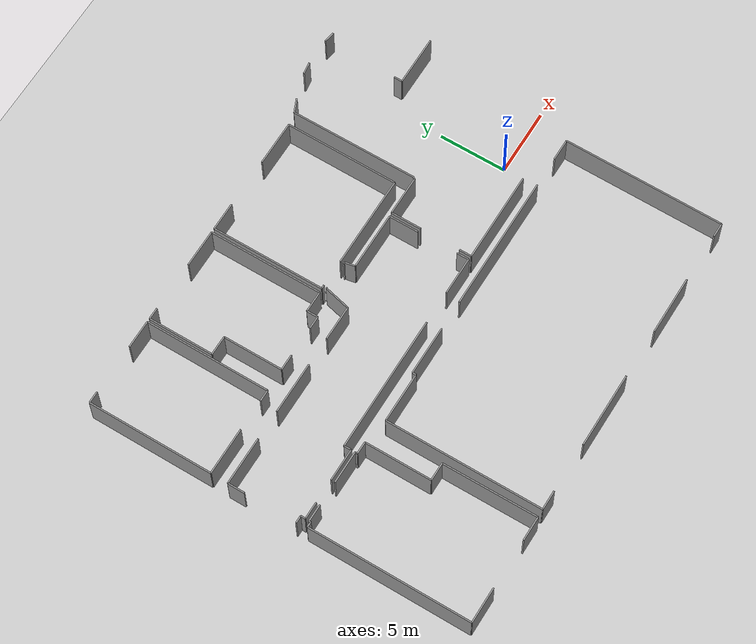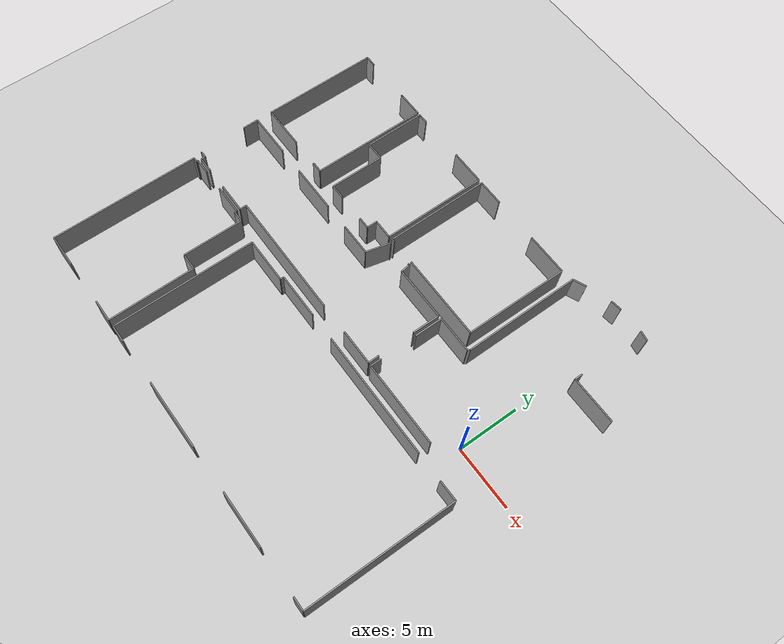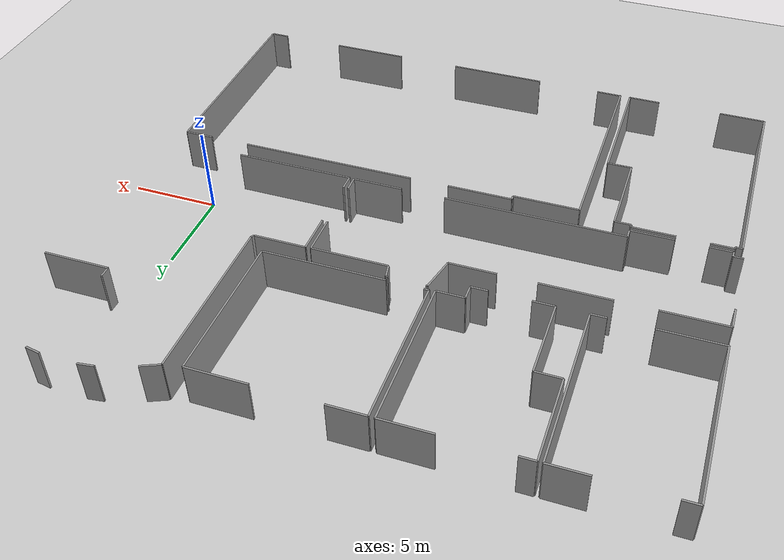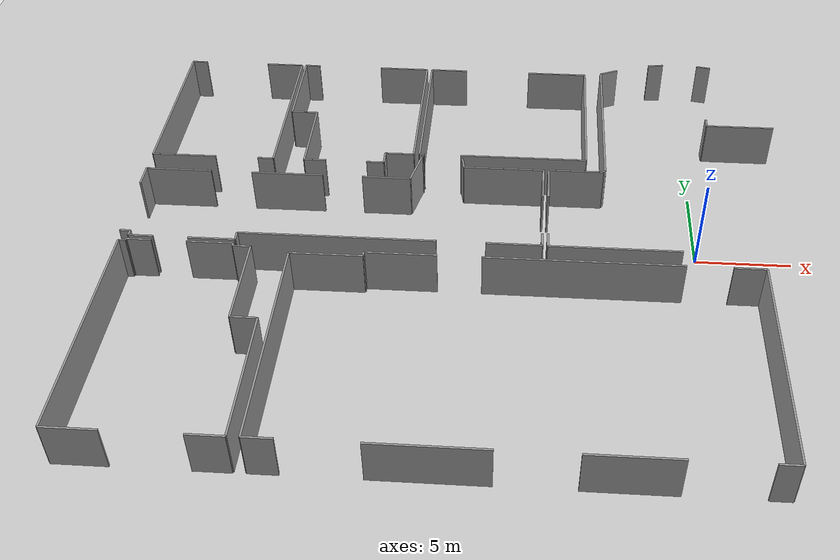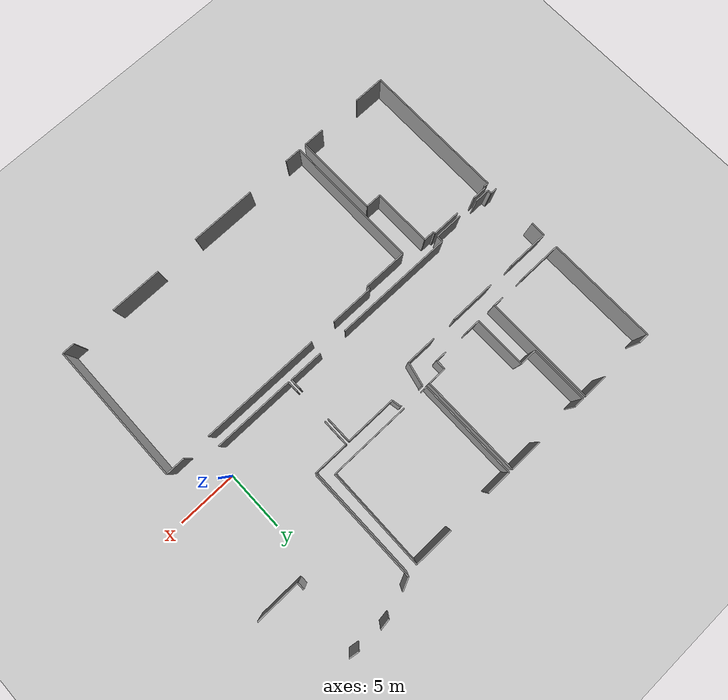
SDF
<sdf version="1.6">
 <world name="default">
  <model name="ground_plane">
   <static>1</static>
   <link name="link">
    <collision name="collision">
     <geometry><plane><normal>0 0 1</normal><size>100 100</size></plane></geometry>
     <surface><friction><ode><mu>100</mu><mu2>50</mu2></ode></friction></surface>
    </collision>
    <visual name="visual">
     <cast_shadows>0</cast_shadows>
     <geometry><plane><normal>0 0 1</normal><size>100 100</size></plane></geometry>
     <material>
      <script><uri>file://media/materials/scripts/gazebo.material</uri><name>Gazebo/Grey</name></script>
     </material>
    </visual>
   </link>
  </model>
  <model name="50056458">
   <static>1</static>
   <link name="Wall_72">
    <collision name="Wall_72_Collision">
     <geometry><box><size>2.86244251146 0.1 2.5</size></box></geometry>
     <pose>1.43122125573 0 1.25 0 0 0</pose>
    </collision>
    <visual name="Wall_72_Visual">
     <pose>1.43122125573 0 1.25 0 0 0</pose>
     <geometry><box><size>2.86244251146 0.1 2.5</size></box></geometry>
     <material>
      <script><uri>file://media/materials/scripts/gazebo.material</uri><name>Gazebo/Grey</name></script>
      <ambient>1 1 1 1</ambient>
     </material>
    </visual>
    <pose>46.63623197 -16.9859486563 0 0 0 3.14159265359</pose>
   </link>
   <link name="Wall_73">
    <collision name="Wall_73_Collision">
     <geometry><box><size>10.175917064 0.1 2.5</size></box></geometry>
     <pose>5.08795853202 0 1.25 0 0 0</pose>
    </collision>
    <visual name="Wall_73_Visual">
     <pose>5.08795853202 0 1.25 0 0 0</pose>
     <geometry><box><size>10.175917064 0.1 2.5</size></box></geometry>
     <material>
      <script><uri>file://media/materials/scripts/gazebo.material</uri><name>Gazebo/Grey</name></script>
      <ambient>1 1 1 1</ambient>
     </material>
    </visual>
    <pose>41.2746999585 -16.9859486563 0 0 0 3.14159265359</pose>
   </link>
   <link name="Wall_74">
    <collision name="Wall_74_Collision">
     <geometry><box><size>0.534611703524 0.1 2.5</size></box></geometry>
     <pose>0.267305851762 0 1.25 0 0 0</pose>
    </collision>
    <visual name="Wall_74_Visual">
     <pose>0.267305851762 0 1.25 0 0 0</pose>
     <geometry><box><size>0.534611703524 0.1 2.5</size></box></geometry>
     <material>
      <script><uri>file://media/materials/scripts/gazebo.material</uri><name>Gazebo/Grey</name></script>
      <ambient>1 1 1 1</ambient>
     </material>
    </visual>
    <pose>31.0987828945 -16.9859486563 0 0 0 -1.57079632679</pose>
   </link>
   <link name="Wall_75">
    <collision name="Wall_75_Collision">
     <geometry><box><size>2.41693275852 0.1 2.5</size></box></geometry>
     <pose>1.20846637926 0 1.25 0 0 0</pose>
    </collision>
    <visual name="Wall_75_Visual">
     <pose>1.20846637926 0 1.25 0 0 0</pose>
     <geometry><box><size>2.41693275852 0.1 2.5</size></box></geometry>
     <material>
      <script><uri>file://media/materials/scripts/gazebo.material</uri><name>Gazebo/Grey</name></script>
      <ambient>1 1 1 1</ambient>
     </material>
    </visual>
    <pose>31.0987828945 -17.5205603598 0 0 0 3.14159265359</pose>
   </link>
   <link name="Wall_76">
    <collision name="Wall_76_Collision">
     <geometry><box><size>1.26877112148 0.1 2.5</size></box></geometry>
     <pose>0.634385560741 0 1.25 0 0 0</pose>
    </collision>
    <visual name="Wall_76_Visual">
     <pose>0.634385560741 0 1.25 0 0 0</pose>
     <geometry><box><size>1.26877112148 0.1 2.5</size></box></geometry>
     <material>
      <script><uri>file://media/materials/scripts/gazebo.material</uri><name>Gazebo/Grey</name></script>
      <ambient>1 1 1 1</ambient>
     </material>
    </visual>
    <pose>26.8938822872 -17.5205603598 0 0 0 3.14159265359</pose>
   </link>
   <link name="Wall_77">
    <collision name="Wall_77_Collision">
     <geometry><box><size>0.348615616557 0.1 2.5</size></box></geometry>
     <pose>0.174307808278 0 1.25 0 0 0</pose>
    </collision>
    <visual name="Wall_77_Visual">
     <pose>0.174307808278 0 1.25 0 0 0</pose>
     <geometry><box><size>0.348615616557 0.1 2.5</size></box></geometry>
     <material>
      <script><uri>file://media/materials/scripts/gazebo.material</uri><name>Gazebo/Grey</name></script>
      <ambient>1 1 1 1</ambient>
     </material>
    </visual>
    <pose>25.6251111657 -17.5205603598 0 0 0 1.57079632679</pose>
   </link>
   <link name="Wall_78">
    <collision name="Wall_78_Collision">
     <geometry><box><size>0.552059423886 0.1 2.5</size></box></geometry>
     <pose>0.276029711943 0 1.25 0 0 0</pose>
    </collision>
    <visual name="Wall_78_Visual">
     <pose>0.276029711943 0 1.25 0 0 0</pose>
     <geometry><box><size>0.552059423886 0.1 2.5</size></box></geometry>
     <material>
      <script><uri>file://media/materials/scripts/gazebo.material</uri><name>Gazebo/Grey</name></script>
      <ambient>1 1 1 1</ambient>
     </material>
    </visual>
    <pose>25.6251111657 -17.1719447432 0 0 0 3.14159265359</pose>
   </link>
   <link name="Wall_80">
    <collision name="Wall_80_Collision">
     <geometry><box><size>1.26877112148 0.1 2.5</size></box></geometry>
     <pose>0.634385560741 0 1.25 0 0 0</pose>
    </collision>
    <visual name="Wall_80_Visual">
     <pose>0.634385560741 0 1.25 0 0 0</pose>
     <geometry><box><size>1.26877112148 0.1 2.5</size></box></geometry>
     <material>
      <script><uri>file://media/materials/scripts/gazebo.material</uri><name>Gazebo/Grey</name></script>
      <ambient>1 1 1 1</ambient>
     </material>
    </visual>
    <pose>25.0730517418 -13.2978732415 0 0 0 1.57079632679</pose>
   </link>
   <link name="Wall_81">
    <collision name="Wall_81_Collision">
     <geometry><box><size>3.56424741884 0.1 2.5</size></box></geometry>
     <pose>1.78212370942 0 1.25 0 0 0</pose>
    </collision>
    <visual name="Wall_81_Visual">
     <pose>1.78212370942 0 1.25 0 0 0</pose>
     <geometry><box><size>3.56424741884 0.1 2.5</size></box></geometry>
     <material>
      <script><uri>file://media/materials/scripts/gazebo.material</uri><name>Gazebo/Grey</name></script>
      <ambient>1 1 1 1</ambient>
     </material>
    </visual>
    <pose>25.0730517418 -12.02910212 0 0 0 0.0</pose>
   </link>
   <link name="Wall_82">
    <collision name="Wall_82_Collision">
     <geometry><box><size>3.88101671085 0.1 2.5</size></box></geometry>
     <pose>1.94050835543 0 1.25 0 0 0</pose>
    </collision>
    <visual name="Wall_82_Visual">
     <pose>1.94050835543 0 1.25 0 0 0</pose>
     <geometry><box><size>3.88101671085 0.1 2.5</size></box></geometry>
     <material>
      <script><uri>file://media/materials/scripts/gazebo.material</uri><name>Gazebo/Grey</name></script>
      <ambient>1 1 1 1</ambient>
     </material>
    </visual>
    <pose>30.8453674608 -12.02910212 0 0 0 0.0</pose>
   </link>
   <link name="Wall_83">
    <collision name="Wall_83_Collision">
     <geometry><box><size>2.60733312441 0.1 2.5</size></box></geometry>
     <pose>1.30366656221 0 1.25 0 0 0</pose>
    </collision>
    <visual name="Wall_83_Visual">
     <pose>1.30366656221 0 1.25 0 0 0</pose>
     <geometry><box><size>2.60733312441 0.1 2.5</size></box></geometry>
     <material>
      <script><uri>file://media/materials/scripts/gazebo.material</uri><name>Gazebo/Grey</name></script>
      <ambient>1 1 1 1</ambient>
     </material>
    </visual>
    <pose>36.8666943346 -12.02910212 0 0 0 0.0</pose>
   </link>
   <link name="Wall_84">
    <collision name="Wall_84_Collision">
     <geometry><box><size>1.99855417939 0.1 2.5</size></box></geometry>
     <pose>0.999277089696 0 1.25 0 0 0</pose>
    </collision>
    <visual name="Wall_84_Visual">
     <pose>0.999277089696 0 1.25 0 0 0</pose>
     <geometry><box><size>1.99855417939 0.1 2.5</size></box></geometry>
     <material>
      <script><uri>file://media/materials/scripts/gazebo.material</uri><name>Gazebo/Grey</name></script>
      <ambient>1 1 1 1</ambient>
     </material>
    </visual>
    <pose>39.474027459 -12.02910212 0 0 0 1.33876897583</pose>
   </link>
   <link name="Wall_85">
    <collision name="Wall_85_Collision">
     <geometry><box><size>0.084189485631 0.1 2.5</size></box></geometry>
     <pose>0.0420947428155 0 1.25 0 0 0</pose>
    </collision>
    <visual name="Wall_85_Visual">
     <pose>0.0420947428155 0 1.25 0 0 0</pose>
     <geometry><box><size>0.084189485631 0.1 2.5</size></box></geometry>
     <material>
      <script><uri>file://media/materials/scripts/gazebo.material</uri><name>Gazebo/Grey</name></script>
      <ambient>1 1 1 1</ambient>
     </material>
    </visual>
    <pose>39.9335970254 -10.084104788 0 0 0 0.0</pose>
   </link>
   <link name="Wall_86">
    <collision name="Wall_86_Collision">
     <geometry><box><size>0.106380275606 0.1 2.5</size></box></geometry>
     <pose>0.0531901378031 0 1.25 0 0 0</pose>
    </collision>
    <visual name="Wall_86_Visual">
     <pose>0.0531901378031 0 1.25 0 0 0</pose>
     <geometry><box><size>0.106380275606 0.1 2.5</size></box></geometry>
     <material>
      <script><uri>file://media/materials/scripts/gazebo.material</uri><name>Gazebo/Grey</name></script>
      <ambient>1 1 1 1</ambient>
     </material>
    </visual>
    <pose>42.0513776076 -10.084104788 0 0 0 0.0</pose>
   </link>
   <link name="Wall_87">
    <collision name="Wall_87_Collision">
     <geometry><box><size>0.77717603247 0.1 2.5</size></box></geometry>
     <pose>0.388588016235 0 1.25 0 0 0</pose>
    </collision>
    <visual name="Wall_87_Visual">
     <pose>0.388588016235 0 1.25 0 0 0</pose>
     <geometry><box><size>0.77717603247 0.1 2.5</size></box></geometry>
     <material>
      <script><uri>file://media/materials/scripts/gazebo.material</uri><name>Gazebo/Grey</name></script>
      <ambient>1 1 1 1</ambient>
     </material>
    </visual>
    <pose>42.1577578832 -10.084104788 0 0 0 -1.38267678011</pose>
   </link>
   <link name="Wall_88">
    <collision name="Wall_88_Collision">
     <geometry><box><size>4.31958125471 0.1 2.5</size></box></geometry>
     <pose>2.15979062736 0 1.25 0 0 0</pose>
    </collision>
    <visual name="Wall_88_Visual">
     <pose>2.15979062736 0 1.25 0 0 0</pose>
     <geometry><box><size>4.31958125471 0.1 2.5</size></box></geometry>
     <material>
      <script><uri>file://media/materials/scripts/gazebo.material</uri><name>Gazebo/Grey</name></script>
      <ambient>1 1 1 1</ambient>
     </material>
    </visual>
    <pose>42.3030990878 -10.8475696003 0 0 0 0.0</pose>
   </link>
   <link name="Wall_89">
    <collision name="Wall_89_Collision">
     <geometry><box><size>2.22754876468 0.1 2.5</size></box></geometry>
     <pose>1.11377438234 0 1.25 0 0 0</pose>
    </collision>
    <visual name="Wall_89_Visual">
     <pose>1.11377438234 0 1.25 0 0 0</pose>
     <geometry><box><size>2.22754876468 0.1 2.5</size></box></geometry>
     <material>
      <script><uri>file://media/materials/scripts/gazebo.material</uri><name>Gazebo/Grey</name></script>
      <ambient>1 1 1 1</ambient>
     </material>
    </visual>
    <pose>46.6226803425 -10.8475696003 0 0 0 -1.57079632679</pose>
   </link>
   <link name="Wall_90">
    <collision name="Wall_90_Collision">
     <geometry><box><size>0.902640122431 0.1 2.5</size></box></geometry>
     <pose>0.451320061215 0 1.25 0 0 0</pose>
    </collision>
    <visual name="Wall_90_Visual">
     <pose>0.451320061215 0 1.25 0 0 0</pose>
     <geometry><box><size>0.902640122431 0.1 2.5</size></box></geometry>
     <material>
      <script><uri>file://media/materials/scripts/gazebo.material</uri><name>Gazebo/Grey</name></script>
      <ambient>1 1 1 1</ambient>
     </material>
    </visual>
    <pose>46.6226803425 -16.0834102671 0 0 0 -1.55578244001</pose>
   </link>
   <link name="Wall_91">
    <collision name="Wall_91_Collision">
     <geometry><box><size>0.858156809269 0.1 2.5</size></box></geometry>
     <pose>0.429078404635 0 1.25 0 0 0</pose>
    </collision>
    <visual name="Wall_91_Visual">
     <pose>0.429078404635 0 1.25 0 0 0</pose>
     <geometry><box><size>0.858156809269 0.1 2.5</size></box></geometry>
     <material>
      <script><uri>file://media/materials/scripts/gazebo.material</uri><name>Gazebo/Grey</name></script>
      <ambient>1 1 1 1</ambient>
     </material>
    </visual>
    <pose>31.780429756 -10.7286540693 0 0 0 3.14159265359</pose>
   </link>
   <link name="Wall_92">
    <collision name="Wall_92_Collision">
     <geometry><box><size>3.50343449059 0.1 2.5</size></box></geometry>
     <pose>1.75171724529 0 1.25 0 0 0</pose>
    </collision>
    <visual name="Wall_92_Visual">
     <pose>1.75171724529 0 1.25 0 0 0</pose>
     <geometry><box><size>3.50343449059 0.1 2.5</size></box></geometry>
     <material>
      <script><uri>file://media/materials/scripts/gazebo.material</uri><name>Gazebo/Grey</name></script>
      <ambient>1 1 1 1</ambient>
     </material>
    </visual>
    <pose>28.586141767 -10.7286540693 0 0 0 3.14159265359</pose>
   </link>
   <link name="Wall_93">
    <collision name="Wall_93_Collision">
     <geometry><box><size>9.34706564917 0.1 2.5</size></box></geometry>
     <pose>4.67353282458 0 1.25 0 0 0</pose>
    </collision>
    <visual name="Wall_93_Visual">
     <pose>4.67353282458 0 1.25 0 0 0</pose>
     <geometry><box><size>9.34706564917 0.1 2.5</size></box></geometry>
     <material>
      <script><uri>file://media/materials/scripts/gazebo.material</uri><name>Gazebo/Grey</name></script>
      <ambient>1 1 1 1</ambient>
     </material>
    </visual>
    <pose>25.0827072764 -10.7286540693 0 0 0 1.57079632679</pose>
   </link>
   <link name="Wall_94">
    <collision name="Wall_94_Collision">
     <geometry><box><size>0.870353273988 0.1 2.5</size></box></geometry>
     <pose>0.435176636994 0 1.25 0 0 0</pose>
    </collision>
    <visual name="Wall_94_Visual">
     <pose>0.435176636994 0 1.25 0 0 0</pose>
     <geometry><box><size>0.870353273988 0.1 2.5</size></box></geometry>
     <material>
      <script><uri>file://media/materials/scripts/gazebo.material</uri><name>Gazebo/Grey</name></script>
      <ambient>1 1 1 1</ambient>
     </material>
    </visual>
    <pose>25.0827072764 -1.38158842013 0 0 0 0.0</pose>
   </link>
   <link name="Wall_95">
    <collision name="Wall_95_Collision">
     <geometry><box><size>2.1016880246 0.1 2.5</size></box></geometry>
     <pose>1.0508440123 0 1.25 0 0 0</pose>
    </collision>
    <visual name="Wall_95_Visual">
     <pose>1.0508440123 0 1.25 0 0 0</pose>
     <geometry><box><size>2.1016880246 0.1 2.5</size></box></geometry>
     <material>
      <script><uri>file://media/materials/scripts/gazebo.material</uri><name>Gazebo/Grey</name></script>
      <ambient>1 1 1 1</ambient>
     </material>
    </visual>
    <pose>29.6929709402 -1.38158842013 0 0 0 0.0</pose>
   </link>
   <link name="Wall_96">
    <collision name="Wall_96_Collision">
     <geometry><box><size>9.34707647985 0.1 2.5</size></box></geometry>
     <pose>4.67353823993 0 1.25 0 0 0</pose>
    </collision>
    <visual name="Wall_96_Visual">
     <pose>4.67353823993 0 1.25 0 0 0</pose>
     <geometry><box><size>9.34707647985 0.1 2.5</size></box></geometry>
     <material>
      <script><uri>file://media/materials/scripts/gazebo.material</uri><name>Gazebo/Grey</name></script>
      <ambient>1 1 1 1</ambient>
     </material>
    </visual>
    <pose>31.7946589648 -1.38158842013 0 0 0 -1.57231864389</pose>
   </link>
   <link name="Wall_97">
    <collision name="Wall_97_Collision">
     <geometry><box><size>1.57097241397 0.1 2.5</size></box></geometry>
     <pose>0.785486206984 0 1.25 0 0 0</pose>
    </collision>
    <visual name="Wall_97_Visual">
     <pose>0.785486206984 0 1.25 0 0 0</pose>
     <geometry><box><size>1.57097241397 0.1 2.5</size></box></geometry>
     <material>
      <script><uri>file://media/materials/scripts/gazebo.material</uri><name>Gazebo/Grey</name></script>
      <ambient>1 1 1 1</ambient>
     </material>
    </visual>
    <pose>39.4528530411 -9.87049726003 0 0 0 3.14159265359</pose>
   </link>
   <link name="Wall_98">
    <collision name="Wall_98_Collision">
     <geometry><box><size>0.833594484488 0.1 2.5</size></box></geometry>
     <pose>0.416797242244 0 1.25 0 0 0</pose>
    </collision>
    <visual name="Wall_98_Visual">
     <pose>0.416797242244 0 1.25 0 0 0</pose>
     <geometry><box><size>0.833594484488 0.1 2.5</size></box></geometry>
     <material>
      <script><uri>file://media/materials/scripts/gazebo.material</uri><name>Gazebo/Grey</name></script>
      <ambient>1 1 1 1</ambient>
     </material>
    </visual>
    <pose>37.8818806271 -9.87049726003 0 0 0 -1.57079632679</pose>
   </link>
   <link name="Wall_99">
    <collision name="Wall_99_Collision">
     <geometry><box><size>0.946750573827 0.1 2.5</size></box></geometry>
     <pose>0.473375286913 0 1.25 0 0 0</pose>
    </collision>
    <visual name="Wall_99_Visual">
     <pose>0.473375286913 0 1.25 0 0 0</pose>
     <geometry><box><size>0.946750573827 0.1 2.5</size></box></geometry>
     <material>
      <script><uri>file://media/materials/scripts/gazebo.material</uri><name>Gazebo/Grey</name></script>
      <ambient>1 1 1 1</ambient>
     </material>
    </visual>
    <pose>37.8818806271 -10.7040917445 0 0 0 3.14159265359</pose>
   </link>
   <link name="Wall_100">
    <collision name="Wall_100_Collision">
     <geometry><box><size>1.19322079836 0.1 2.5</size></box></geometry>
     <pose>0.59661039918 0 1.25 0 0 0</pose>
    </collision>
    <visual name="Wall_100_Visual">
     <pose>0.59661039918 0 1.25 0 0 0</pose>
     <geometry><box><size>1.19322079836 0.1 2.5</size></box></geometry>
     <material>
      <script><uri>file://media/materials/scripts/gazebo.material</uri><name>Gazebo/Grey</name></script>
      <ambient>1 1 1 1</ambient>
     </material>
    </visual>
    <pose>34.6867456614 -10.7040917445 0 0 0 3.14159265359</pose>
   </link>
   <link name="Wall_101">
    <collision name="Wall_101_Collision">
     <geometry><box><size>4.44561139014 0.1 2.5</size></box></geometry>
     <pose>2.22280569507 0 1.25 0 0 0</pose>
    </collision>
    <visual name="Wall_101_Visual">
     <pose>2.22280569507 0 1.25 0 0 0</pose>
     <geometry><box><size>4.44561139014 0.1 2.5</size></box></geometry>
     <material>
      <script><uri>file://media/materials/scripts/gazebo.material</uri><name>Gazebo/Grey</name></script>
      <ambient>1 1 1 1</ambient>
     </material>
    </visual>
    <pose>33.493524863 -10.7040917445 0 0 0 1.57079632679</pose>
   </link>
   <link name="Wall_102">
    <collision name="Wall_102_Collision">
     <geometry><box><size>1.44409530182 0.1 2.5</size></box></geometry>
     <pose>0.72204765091 0 1.25 0 0 0</pose>
    </collision>
    <visual name="Wall_102_Visual">
     <pose>0.72204765091 0 1.25 0 0 0</pose>
     <geometry><box><size>1.44409530182 0.1 2.5</size></box></geometry>
     <material>
      <script><uri>file://media/materials/scripts/gazebo.material</uri><name>Gazebo/Grey</name></script>
      <ambient>1 1 1 1</ambient>
     </material>
    </visual>
    <pose>33.493524863 -6.25848035438 0 0 0 3.14159265359</pose>
   </link>
   <link name="Wall_103">
    <collision name="Wall_103_Collision">
     <geometry><box><size>4.87689193424 0.1 2.5</size></box></geometry>
     <pose>2.43844596712 0 1.25 0 0 0</pose>
    </collision>
    <visual name="Wall_103_Visual">
     <pose>2.43844596712 0 1.25 0 0 0</pose>
     <geometry><box><size>4.87689193424 0.1 2.5</size></box></geometry>
     <material>
      <script><uri>file://media/materials/scripts/gazebo.material</uri><name>Gazebo/Grey</name></script>
      <ambient>1 1 1 1</ambient>
     </material>
    </visual>
    <pose>32.0494295612 -6.25848035438 0 0 0 1.57079632679</pose>
   </link>
   <link name="Wall_104">
    <collision name="Wall_104_Collision">
     <geometry><box><size>0.853752530343 0.1 2.5</size></box></geometry>
     <pose>0.426876265171 0 1.25 0 0 0</pose>
    </collision>
    <visual name="Wall_104_Visual">
     <pose>0.426876265171 0 1.25 0 0 0</pose>
     <geometry><box><size>0.853752530343 0.1 2.5</size></box></geometry>
     <material>
      <script><uri>file://media/materials/scripts/gazebo.material</uri><name>Gazebo/Grey</name></script>
      <ambient>1 1 1 1</ambient>
     </material>
    </visual>
    <pose>32.0494295612 -1.38158842013 0 0 0 0.0</pose>
   </link>
   <link name="Wall_105">
    <collision name="Wall_105_Collision">
     <geometry><box><size>2.81806093151 0.1 2.5</size></box></geometry>
     <pose>1.40903046575 0 1.25 0 0 0</pose>
    </collision>
    <visual name="Wall_105_Visual">
     <pose>1.40903046575 0 1.25 0 0 0</pose>
     <geometry><box><size>2.81806093151 0.1 2.5</size></box></geometry>
     <material>
      <script><uri>file://media/materials/scripts/gazebo.material</uri><name>Gazebo/Grey</name></script>
      <ambient>1 1 1 1</ambient>
     </material>
    </visual>
    <pose>36.6342839235 -1.38158842013 0 0 0 0.0</pose>
   </link>
   <link name="Wall_106">
    <collision name="Wall_106_Collision">
     <geometry><box><size>8.48890885511 0.1 2.5</size></box></geometry>
     <pose>4.24445442755 0 1.25 0 0 0</pose>
    </collision>
    <visual name="Wall_106_Visual">
     <pose>4.24445442755 0 1.25 0 0 0</pose>
     <geometry><box><size>8.48890885511 0.1 2.5</size></box></geometry>
     <material>
      <script><uri>file://media/materials/scripts/gazebo.material</uri><name>Gazebo/Grey</name></script>
      <ambient>1 1 1 1</ambient>
     </material>
    </visual>
    <pose>39.452344855 -1.38158842013 0 0 0 -1.57073646209</pose>
   </link>
   <link name="Wall_107">
    <collision name="Wall_107_Collision">
     <geometry><box><size>6.89371289183 0.1 2.5</size></box></geometry>
     <pose>3.44685644592 0 1.25 0 0 0</pose>
    </collision>
    <visual name="Wall_107_Visual">
     <pose>3.44685644592 0 1.25 0 0 0</pose>
     <geometry><box><size>6.89371289183 0.1 2.5</size></box></geometry>
     <material>
      <script><uri>file://media/materials/scripts/gazebo.material</uri><name>Gazebo/Grey</name></script>
      <ambient>1 1 1 1</ambient>
     </material>
    </visual>
    <pose>48.9454292901 -9.8230665639 0 0 0 3.14159265359</pose>
   </link>
   <link name="Wall_108">
    <collision name="Wall_108_Collision">
     <geometry><box><size>0.271032549315 0.1 2.5</size></box></geometry>
     <pose>0.135516274658 0 1.25 0 0 0</pose>
    </collision>
    <visual name="Wall_108_Visual">
     <pose>0.135516274658 0 1.25 0 0 0</pose>
     <geometry><box><size>0.271032549315 0.1 2.5</size></box></geometry>
     <material>
      <script><uri>file://media/materials/scripts/gazebo.material</uri><name>Gazebo/Grey</name></script>
      <ambient>1 1 1 1</ambient>
     </material>
    </visual>
    <pose>40.0381139522 -9.8230665639 0 0 0 3.14159265359</pose>
   </link>
   <link name="Wall_109">
    <collision name="Wall_109_Collision">
     <geometry><box><size>8.44029237636 0.1 2.5</size></box></geometry>
     <pose>4.22014618818 0 1.25 0 0 0</pose>
    </collision>
    <visual name="Wall_109_Visual">
     <pose>4.22014618818 0 1.25 0 0 0</pose>
     <geometry><box><size>8.44029237636 0.1 2.5</size></box></geometry>
     <material>
      <script><uri>file://media/materials/scripts/gazebo.material</uri><name>Gazebo/Grey</name></script>
      <ambient>1 1 1 1</ambient>
     </material>
    </visual>
    <pose>39.7670814029 -9.8230665639 0 0 0 1.57079632679</pose>
   </link>
   <link name="Wall_110">
    <collision name="Wall_110_Collision">
     <geometry><box><size>2.10778625696 0.1 2.5</size></box></geometry>
     <pose>1.05389312848 0 1.25 0 0 0</pose>
    </collision>
    <visual name="Wall_110_Visual">
     <pose>1.05389312848 0 1.25 0 0 0</pose>
     <geometry><box><size>2.10778625696 0.1 2.5</size></box></geometry>
     <material>
      <script><uri>file://media/materials/scripts/gazebo.material</uri><name>Gazebo/Grey</name></script>
      <ambient>1 1 1 1</ambient>
     </material>
    </visual>
    <pose>39.7670814029 -1.38277418754 0 0 0 0.0</pose>
   </link>
   <link name="Wall_111">
    <collision name="Wall_111_Collision">
     <geometry><box><size>3.37723495981 0.1 2.5</size></box></geometry>
     <pose>1.68861747991 0 1.25 0 0 0</pose>
    </collision>
    <visual name="Wall_111_Visual">
     <pose>1.68861747991 0 1.25 0 0 0</pose>
     <geometry><box><size>3.37723495981 0.1 2.5</size></box></geometry>
     <material>
      <script><uri>file://media/materials/scripts/gazebo.material</uri><name>Gazebo/Grey</name></script>
      <ambient>1 1 1 1</ambient>
     </material>
    </visual>
    <pose>45.6100349801 -1.38277418754 0 0 0 0.0</pose>
   </link>
   <link name="Wall_112">
    <collision name="Wall_112_Collision">
     <geometry><box><size>8.44039608303 0.1 2.5</size></box></geometry>
     <pose>4.22019804152 0 1.25 0 0 0</pose>
    </collision>
    <visual name="Wall_112_Visual">
     <pose>4.22019804152 0 1.25 0 0 0</pose>
     <geometry><box><size>8.44039608303 0.1 2.5</size></box></geometry>
     <material>
      <script><uri>file://media/materials/scripts/gazebo.material</uri><name>Gazebo/Grey</name></script>
      <ambient>1 1 1 1</ambient>
     </material>
    </visual>
    <pose>48.9872699399 -1.38277418754 0 0 0 -1.57575353742</pose>
   </link>
   <link name="Wall_113">
    <collision name="Wall_113_Collision">
     <geometry><box><size>1.06312517469 0.1 2.5</size></box></geometry>
     <pose>0.531562587344 0 1.25 0 0 0</pose>
    </collision>
    <visual name="Wall_113_Visual">
     <pose>0.531562587344 0 1.25 0 0 0</pose>
     <geometry><box><size>1.06312517469 0.1 2.5</size></box></geometry>
     <material>
      <script><uri>file://media/materials/scripts/gazebo.material</uri><name>Gazebo/Grey</name></script>
      <ambient>1 1 1 1</ambient>
     </material>
    </visual>
    <pose>57.6411698442 -30.0058441393 0 0 0 3.14159265359</pose>
   </link>
   <link name="Wall_114">
    <collision name="Wall_114_Collision">
     <geometry><box><size>4.40614227515 0.1 2.5</size></box></geometry>
     <pose>2.20307113757 0 1.25 0 0 0</pose>
    </collision>
    <visual name="Wall_114_Visual">
     <pose>2.20307113757 0 1.25 0 0 0</pose>
     <geometry><box><size>4.40614227515 0.1 2.5</size></box></geometry>
     <material>
      <script><uri>file://media/materials/scripts/gazebo.material</uri><name>Gazebo/Grey</name></script>
      <ambient>1 1 1 1</ambient>
     </material>
    </visual>
    <pose>52.8635435812 -30.0058441393 0 0 0 3.14159265359</pose>
   </link>
   <link name="Wall_115">
    <collision name="Wall_115_Collision">
     <geometry><box><size>5.61037377083 0.1 2.5</size></box></geometry>
     <pose>2.80518688541 0 1.25 0 0 0</pose>
    </collision>
    <visual name="Wall_115_Visual">
     <pose>2.80518688541 0 1.25 0 0 0</pose>
     <geometry><box><size>5.61037377083 0.1 2.5</size></box></geometry>
     <material>
      <script><uri>file://media/materials/scripts/gazebo.material</uri><name>Gazebo/Grey</name></script>
      <ambient>1 1 1 1</ambient>
     </material>
    </visual>
    <pose>44.7429002177 -30.0058441393 0 0 0 3.14159265359</pose>
   </link>
   <link name="Wall_116">
    <collision name="Wall_116_Collision">
     <geometry><box><size>1.43460916259 0.1 2.5</size></box></geometry>
     <pose>0.717304581297 0 1.25 0 0 0</pose>
    </collision>
    <visual name="Wall_116_Visual">
     <pose>0.717304581297 0 1.25 0 0 0</pose>
     <geometry><box><size>1.43460916259 0.1 2.5</size></box></geometry>
     <material>
      <script><uri>file://media/materials/scripts/gazebo.material</uri><name>Gazebo/Grey</name></script>
      <ambient>1 1 1 1</ambient>
     </material>
    </visual>
    <pose>35.4180253585 -30.0058441393 0 0 0 3.14159265359</pose>
   </link>
   <link name="Wall_117">
    <collision name="Wall_117_Collision">
     <geometry><box><size>11.6687982247 0.1 2.5</size></box></geometry>
     <pose>5.83439911237 0 1.25 0 0 0</pose>
    </collision>
    <visual name="Wall_117_Visual">
     <pose>5.83439911237 0 1.25 0 0 0</pose>
     <geometry><box><size>11.6687982247 0.1 2.5</size></box></geometry>
     <material>
      <script><uri>file://media/materials/scripts/gazebo.material</uri><name>Gazebo/Grey</name></script>
      <ambient>1 1 1 1</ambient>
     </material>
    </visual>
    <pose>33.9834161959 -30.0058441393 0 0 0 1.57079632679</pose>
   </link>
   <link name="Wall_118">
    <collision name="Wall_118_Collision">
     <geometry><box><size>3.74024918055 0.1 2.5</size></box></geometry>
     <pose>1.87012459028 0 1.25 0 0 0</pose>
    </collision>
    <visual name="Wall_118_Visual">
     <pose>1.87012459028 0 1.25 0 0 0</pose>
     <geometry><box><size>3.74024918055 0.1 2.5</size></box></geometry>
     <material>
      <script><uri>file://media/materials/scripts/gazebo.material</uri><name>Gazebo/Grey</name></script>
      <ambient>1 1 1 1</ambient>
     </material>
    </visual>
    <pose>33.9834161959 -18.3370459146 0 0 0 0.0</pose>
   </link>
   <link name="Wall_119">
    <collision name="Wall_119_Collision">
     <geometry><box><size>0.281704455945 0.1 2.5</size></box></geometry>
     <pose>0.140852227972 0 1.25 0 0 0</pose>
    </collision>
    <visual name="Wall_119_Visual">
     <pose>0.140852227972 0 1.25 0 0 0</pose>
     <geometry><box><size>0.281704455945 0.1 2.5</size></box></geometry>
     <material>
      <script><uri>file://media/materials/scripts/gazebo.material</uri><name>Gazebo/Grey</name></script>
      <ambient>1 1 1 1</ambient>
     </material>
    </visual>
    <pose>37.7236653764 -18.3370459146 0 0 0 1.57079632679</pose>
   </link>
   <link name="Wall_120">
    <collision name="Wall_120_Collision">
     <geometry><box><size>3.67604834543 0.1 2.5</size></box></geometry>
     <pose>1.83802417272 0 1.25 0 0 0</pose>
    </collision>
    <visual name="Wall_120_Visual">
     <pose>1.83802417272 0 1.25 0 0 0</pose>
     <geometry><box><size>3.67604834543 0.1 2.5</size></box></geometry>
     <material>
      <script><uri>file://media/materials/scripts/gazebo.material</uri><name>Gazebo/Grey</name></script>
      <ambient>1 1 1 1</ambient>
     </material>
    </visual>
    <pose>37.7236653764 -18.0553414587 0 0 0 0.0</pose>
   </link>
   <link name="Wall_121">
    <collision name="Wall_121_Collision">
     <geometry><box><size>10.1342458096 0.1 2.5</size></box></geometry>
     <pose>5.06712290479 0 1.25 0 0 0</pose>
    </collision>
    <visual name="Wall_121_Visual">
     <pose>5.06712290479 0 1.25 0 0 0</pose>
     <geometry><box><size>10.1342458096 0.1 2.5</size></box></geometry>
     <material>
      <script><uri>file://media/materials/scripts/gazebo.material</uri><name>Gazebo/Grey</name></script>
      <ambient>1 1 1 1</ambient>
     </material>
    </visual>
    <pose>43.6425080675 -18.0553414587 0 0 0 0.0</pose>
   </link>
   <link name="Wall_122">
    <collision name="Wall_122_Collision">
     <geometry><box><size>1.63669780718 0.1 2.5</size></box></geometry>
     <pose>0.818348903589 0 1.25 0 0 0</pose>
    </collision>
    <visual name="Wall_122_Visual">
     <pose>0.818348903589 0 1.25 0 0 0</pose>
     <geometry><box><size>1.63669780718 0.1 2.5</size></box></geometry>
     <material>
      <script><uri>file://media/materials/scripts/gazebo.material</uri><name>Gazebo/Grey</name></script>
      <ambient>1 1 1 1</ambient>
     </material>
    </visual>
    <pose>56.0730771511 -18.0553414587 0 0 0 0.0</pose>
   </link>
   <link name="Wall_123">
    <collision name="Wall_123_Collision">
     <geometry><box><size>11.9506996022 0.1 2.5</size></box></geometry>
     <pose>5.97534980111 0 1.25 0 0 0</pose>
    </collision>
    <visual name="Wall_123_Visual">
     <pose>5.97534980111 0 1.25 0 0 0</pose>
     <geometry><box><size>11.9506996022 0.1 2.5</size></box></geometry>
     <material>
      <script><uri>file://media/materials/scripts/gazebo.material</uri><name>Gazebo/Grey</name></script>
      <ambient>1 1 1 1</ambient>
     </material>
    </visual>
    <pose>57.7097749583 -18.0553414587 0 0 0 -1.57653703597</pose>
   </link>
   <link name="Wall_124">
    <collision name="Wall_124_Collision">
     <geometry><box><size>1.81354654561 0.1 2.5</size></box></geometry>
     <pose>0.906773272803 0 1.25 0 0 0</pose>
    </collision>
    <visual name="Wall_124_Visual">
     <pose>0.906773272803 0 1.25 0 0 0</pose>
     <geometry><box><size>1.81354654561 0.1 2.5</size></box></geometry>
     <material>
      <script><uri>file://media/materials/scripts/gazebo.material</uri><name>Gazebo/Grey</name></script>
      <ambient>1 1 1 1</ambient>
     </material>
    </visual>
    <pose>33.3757950994 -30.0180406041 0 0 0 3.14159265359</pose>
   </link>
   <link name="Wall_125">
    <collision name="Wall_125_Collision">
     <geometry><box><size>2.64409191391 0.1 2.5</size></box></geometry>
     <pose>1.32204595696 0 1.25 0 0 0</pose>
    </collision>
    <visual name="Wall_125_Visual">
     <pose>1.32204595696 0 1.25 0 0 0</pose>
     <geometry><box><size>2.64409191391 0.1 2.5</size></box></geometry>
     <material>
      <script><uri>file://media/materials/scripts/gazebo.material</uri><name>Gazebo/Grey</name></script>
      <ambient>1 1 1 1</ambient>
     </material>
    </visual>
    <pose>27.8624848603 -30.0180406041 0 0 0 3.14159265359</pose>
   </link>
   <link name="Wall_126">
    <collision name="Wall_126_Collision">
     <geometry><box><size>12.085341374 0.1 2.5</size></box></geometry>
     <pose>6.04267068698 0 1.25 0 0 0</pose>
    </collision>
    <visual name="Wall_126_Visual">
     <pose>6.04267068698 0 1.25 0 0 0</pose>
     <geometry><box><size>12.085341374 0.1 2.5</size></box></geometry>
     <material>
      <script><uri>file://media/materials/scripts/gazebo.material</uri><name>Gazebo/Grey</name></script>
      <ambient>1 1 1 1</ambient>
     </material>
    </visual>
    <pose>25.2183929464 -30.0180406041 0 0 0 1.57079632679</pose>
   </link>
   <link name="Wall_127">
    <collision name="Wall_127_Collision">
     <geometry><box><size>0.378090406295 0.1 2.5</size></box></geometry>
     <pose>0.189045203147 0 1.25 0 0 0</pose>
    </collision>
    <visual name="Wall_127_Visual">
     <pose>0.189045203147 0 1.25 0 0 0</pose>
     <geometry><box><size>0.378090406295 0.1 2.5</size></box></geometry>
     <material>
      <script><uri>file://media/materials/scripts/gazebo.material</uri><name>Gazebo/Grey</name></script>
      <ambient>1 1 1 1</ambient>
     </material>
    </visual>
    <pose>25.2183929464 -17.9326992301 0 0 0 0.0</pose>
   </link>
   <link name="Wall_128">
    <collision name="Wall_128_Collision">
     <geometry><box><size>0.122472833222 0.1 2.5</size></box></geometry>
     <pose>0.0612364166109 0 1.25 0 0 0</pose>
    </collision>
    <visual name="Wall_128_Visual">
     <pose>0.0612364166109 0 1.25 0 0 0</pose>
     <geometry><box><size>0.122472833222 0.1 2.5</size></box></geometry>
     <material>
      <script><uri>file://media/materials/scripts/gazebo.material</uri><name>Gazebo/Grey</name></script>
      <ambient>1 1 1 1</ambient>
     </material>
    </visual>
    <pose>25.5964833527 -17.9326992301 0 0 0 1.57079632679</pose>
   </link>
   <link name="Wall_129">
    <collision name="Wall_129_Collision">
     <geometry><box><size>1.2809675862 0.1 2.5</size></box></geometry>
     <pose>0.640483793101 0 1.25 0 0 0</pose>
    </collision>
    <visual name="Wall_129_Visual">
     <pose>0.640483793101 0 1.25 0 0 0</pose>
     <geometry><box><size>1.2809675862 0.1 2.5</size></box></geometry>
     <material>
      <script><uri>file://media/materials/scripts/gazebo.material</uri><name>Gazebo/Grey</name></script>
      <ambient>1 1 1 1</ambient>
     </material>
    </visual>
    <pose>25.5964833527 -17.8102263969 0 0 0 0.0</pose>
   </link>
   <link name="Wall_130">
    <collision name="Wall_130_Collision">
     <geometry><box><size>2.42082885141 0.1 2.5</size></box></geometry>
     <pose>1.21041442571 0 1.25 0 0 0</pose>
    </collision>
    <visual name="Wall_130_Visual">
     <pose>1.21041442571 0 1.25 0 0 0</pose>
     <geometry><box><size>2.42082885141 0.1 2.5</size></box></geometry>
     <material>
      <script><uri>file://media/materials/scripts/gazebo.material</uri><name>Gazebo/Grey</name></script>
      <ambient>1 1 1 1</ambient>
     </material>
    </visual>
    <pose>28.6679597178 -17.8102263969 0 0 0 0.0</pose>
   </link>
   <link name="Wall_131">
    <collision name="Wall_131_Collision">
     <geometry><box><size>0.182099994071 0.1 2.5</size></box></geometry>
     <pose>0.0910499970356 0 1.25 0 0 0</pose>
    </collision>
    <visual name="Wall_131_Visual">
     <pose>0.0910499970356 0 1.25 0 0 0</pose>
     <geometry><box><size>0.182099994071 0.1 2.5</size></box></geometry>
     <material>
      <script><uri>file://media/materials/scripts/gazebo.material</uri><name>Gazebo/Grey</name></script>
      <ambient>1 1 1 1</ambient>
     </material>
    </visual>
    <pose>31.0887885692 -17.8102263969 0 0 0 -1.57079632679</pose>
   </link>
   <link name="Wall_132">
    <collision name="Wall_132_Collision">
     <geometry><box><size>0.911346947072 0.1 2.5</size></box></geometry>
     <pose>0.455673473536 0 1.25 0 0 0</pose>
    </collision>
    <visual name="Wall_132_Visual">
     <pose>0.455673473536 0 1.25 0 0 0</pose>
     <geometry><box><size>0.911346947072 0.1 2.5</size></box></geometry>
     <material>
      <script><uri>file://media/materials/scripts/gazebo.material</uri><name>Gazebo/Grey</name></script>
      <ambient>1 1 1 1</ambient>
     </material>
    </visual>
    <pose>31.0887885692 -17.9923263909 0 0 0 0.0</pose>
   </link>
   <link name="Wall_133">
    <collision name="Wall_133_Collision">
     <geometry><box><size>4.96870421032 0.1 2.5</size></box></geometry>
     <pose>2.48435210516 0 1.25 0 0 0</pose>
    </collision>
    <visual name="Wall_133_Visual">
     <pose>2.48435210516 0 1.25 0 0 0</pose>
     <geometry><box><size>4.96870421032 0.1 2.5</size></box></geometry>
     <material>
      <script><uri>file://media/materials/scripts/gazebo.material</uri><name>Gazebo/Grey</name></script>
      <ambient>1 1 1 1</ambient>
     </material>
    </visual>
    <pose>32.0001355163 -17.9923263909 0 0 0 -1.57079632679</pose>
   </link>
   <link name="Wall_134">
    <collision name="Wall_134_Collision">
     <geometry><box><size>1.34415204926 0.1 2.5</size></box></geometry>
     <pose>0.67207602463 0 1.25 0 0 0</pose>
    </collision>
    <visual name="Wall_134_Visual">
     <pose>0.67207602463 0 1.25 0 0 0</pose>
     <geometry><box><size>1.34415204926 0.1 2.5</size></box></geometry>
     <material>
      <script><uri>file://media/materials/scripts/gazebo.material</uri><name>Gazebo/Grey</name></script>
      <ambient>1 1 1 1</ambient>
     </material>
    </visual>
    <pose>32.0001355163 -22.9610306013 0 0 0 0.0</pose>
   </link>
   <link name="Wall_135">
    <collision name="Wall_135_Collision">
     <geometry><box><size>7.05708033851 0.1 2.5</size></box></geometry>
     <pose>3.52854016926 0 1.25 0 0 0</pose>
    </collision>
    <visual name="Wall_135_Visual">
     <pose>3.52854016926 0 1.25 0 0 0</pose>
     <geometry><box><size>7.05708033851 0.1 2.5</size></box></geometry>
     <material>
      <script><uri>file://media/materials/scripts/gazebo.material</uri><name>Gazebo/Grey</name></script>
      <ambient>1 1 1 1</ambient>
     </material>
    </visual>
    <pose>33.3442875655 -22.9610306013 0 0 0 -1.56633164211</pose>
   </link>
   <link name="Wall_138">
    <collision name="Wall_138_Collision">
     <geometry><box><size>6.77954043043 0.1 2.5</size></box></geometry>
     <pose>3.38977021522 0 1.25 0 0 0</pose>
    </collision>
    <visual name="Wall_138_Visual">
     <pose>3.38977021522 0 1.25 0 0 0</pose>
     <geometry><box><size>6.77954043043 0.1 2.5</size></box></geometry>
     <material>
      <script><uri>file://media/materials/scripts/gazebo.material</uri><name>Gazebo/Grey</name></script>
      <ambient>1 1 1 1</ambient>
     </material>
    </visual>
    <pose>53.6929031821 -17.0083088416 0 0 0 3.14159265359</pose>
   </link>
   <link name="Wall_139">
    <collision name="Wall_139_Collision">
     <geometry><box><size>0.921002481642 0.1 2.5</size></box></geometry>
     <pose>0.460501240821 0 1.25 0 0 0</pose>
    </collision>
    <visual name="Wall_139_Visual">
     <pose>0.460501240821 0 1.25 0 0 0</pose>
     <geometry><box><size>0.921002481642 0.1 2.5</size></box></geometry>
     <material>
      <script><uri>file://media/materials/scripts/gazebo.material</uri><name>Gazebo/Grey</name></script>
      <ambient>1 1 1 1</ambient>
     </material>
    </visual>
    <pose>46.9133627517 -17.0083088416 0 0 0 1.57079632679</pose>
   </link>
   <link name="Wall_140">
    <collision name="Wall_140_Collision">
     <geometry><box><size>2.28006132111 0.1 2.5</size></box></geometry>
     <pose>1.14003066056 0 1.25 0 0 0</pose>
    </collision>
    <visual name="Wall_140_Visual">
     <pose>1.14003066056 0 1.25 0 0 0</pose>
     <geometry><box><size>2.28006132111 0.1 2.5</size></box></geometry>
     <material>
      <script><uri>file://media/materials/scripts/gazebo.material</uri><name>Gazebo/Grey</name></script>
      <ambient>1 1 1 1</ambient>
     </material>
    </visual>
    <pose>46.9133627517 -13.098325527 0 0 0 1.57079632679</pose>
   </link>
   <link name="Wall_141">
    <collision name="Wall_141_Collision">
     <geometry><box><size>2.95391599685 0.1 2.5</size></box></geometry>
     <pose>1.47695799842 0 1.25 0 0 0</pose>
    </collision>
    <visual name="Wall_141_Visual">
     <pose>1.47695799842 0 1.25 0 0 0</pose>
     <geometry><box><size>2.95391599685 0.1 2.5</size></box></geometry>
     <material>
      <script><uri>file://media/materials/scripts/gazebo.material</uri><name>Gazebo/Grey</name></script>
      <ambient>1 1 1 1</ambient>
     </material>
    </visual>
    <pose>46.9133627517 -10.8182642059 0 0 0 0.0</pose>
   </link>
   <link name="Wall_142">
    <collision name="Wall_142_Collision">
     <geometry><box><size>0.182647146301 0.1 2.5</size></box></geometry>
     <pose>0.0913235731505 0 1.25 0 0 0</pose>
    </collision>
    <visual name="Wall_142_Visual">
     <pose>0.0913235731505 0 1.25 0 0 0</pose>
     <geometry><box><size>0.182647146301 0.1 2.5</size></box></geometry>
     <material>
      <script><uri>file://media/materials/scripts/gazebo.material</uri><name>Gazebo/Grey</name></script>
      <ambient>1 1 1 1</ambient>
     </material>
    </visual>
    <pose>49.8672787485 -10.8182642059 0 0 0 1.01160715702</pose>
   </link>
   <link name="Wall_143">
    <collision name="Wall_143_Collision">
     <geometry><box><size>9.47207941254 0.1 2.5</size></box></geometry>
     <pose>4.73603970627 0 1.25 0 0 0</pose>
    </collision>
    <visual name="Wall_143_Visual">
     <pose>4.73603970627 0 1.25 0 0 0</pose>
     <geometry><box><size>9.47207941254 0.1 2.5</size></box></geometry>
     <material>
      <script><uri>file://media/materials/scripts/gazebo.material</uri><name>Gazebo/Grey</name></script>
      <ambient>1 1 1 1</ambient>
     </material>
    </visual>
    <pose>49.9641728849 -10.6634368621 0 0 0 1.57079632679</pose>
   </link>
   <link name="Wall_144">
    <collision name="Wall_144_Collision">
     <geometry><box><size>1.07978806449 0.1 2.5</size></box></geometry>
     <pose>0.539894032246 0 1.25 0 0 0</pose>
    </collision>
    <visual name="Wall_144_Visual">
     <pose>0.539894032246 0 1.25 0 0 0</pose>
     <geometry><box><size>1.07978806449 0.1 2.5</size></box></geometry>
     <material>
      <script><uri>file://media/materials/scripts/gazebo.material</uri><name>Gazebo/Grey</name></script>
      <ambient>1 1 1 1</ambient>
     </material>
    </visual>
    <pose>49.9641728849 -1.19135744958 0 0 0 0.415500538928</pose>
   </link>
   <link name="Wall_145">
    <collision name="Wall_145_Collision">
     <geometry><box><size>0.888823677955 0.1 2.5</size></box></geometry>
     <pose>0.444411838977 0 1.25 0 0 0</pose>
    </collision>
    <visual name="Wall_145_Visual">
     <pose>0.444411838977 0 1.25 0 0 0</pose>
     <geometry><box><size>0.888823677955 0.1 2.5</size></box></geometry>
     <material>
      <script><uri>file://media/materials/scripts/gazebo.material</uri><name>Gazebo/Grey</name></script>
      <ambient>1 1 1 1</ambient>
     </material>
    </visual>
    <pose>52.8794667435 -0.116205205519 0 0 0 0.131115801186</pose>
   </link>
   <link name="Wall_146">
    <collision name="Wall_146_Collision">
     <geometry><box><size>0.815291815617 0.1 2.5</size></box></geometry>
     <pose>0.407645907809 0 1.25 0 0 0</pose>
    </collision>
    <visual name="Wall_146_Visual">
     <pose>0.407645907809 0 1.25 0 0 0</pose>
     <geometry><box><size>0.815291815617 0.1 2.5</size></box></geometry>
     <material>
      <script><uri>file://media/materials/scripts/gazebo.material</uri><name>Gazebo/Grey</name></script>
      <ambient>1 1 1 1</ambient>
     </material>
    </visual>
    <pose>55.8042467413 -0.00982492991267 0 0 0 -0.166993189601</pose>
   </link>
   <link name="Wall_150">
    <collision name="Wall_150_Collision">
     <geometry><box><size>0.623205468082 0.1 2.5</size></box></geometry>
     <pose>0.311602734041 0 1.25 0 0 0</pose>
    </collision>
    <visual name="Wall_150_Visual">
     <pose>0.311602734041 0 1.25 0 0 0</pose>
     <geometry><box><size>0.623205468082 0.1 2.5</size></box></geometry>
     <material>
      <script><uri>file://media/materials/scripts/gazebo.material</uri><name>Gazebo/Grey</name></script>
      <ambient>1 1 1 1</ambient>
     </material>
    </visual>
    <pose>55.850999856 -5.53617861045 0 0 0 -1.57079632679</pose>
   </link>
   <link name="Wall_151">
    <collision name="Wall_151_Collision">
     <geometry><box><size>3.73940220383 0.1 2.5</size></box></geometry>
     <pose>1.86970110192 0 1.25 0 0 0</pose>
    </collision>
    <visual name="Wall_151_Visual">
     <pose>1.86970110192 0 1.25 0 0 0</pose>
     <geometry><box><size>3.73940220383 0.1 2.5</size></box></geometry>
     <material>
      <script><uri>file://media/materials/scripts/gazebo.material</uri><name>Gazebo/Grey</name></script>
      <ambient>1 1 1 1</ambient>
     </material>
    </visual>
    <pose>55.850999856 -6.15938407853 0 0 0 0.0</pose>
   </link>
   <pose>-54.75 15.0009033007 0 0 0 0</pose>
  </model>
 </world>
</sdf>
